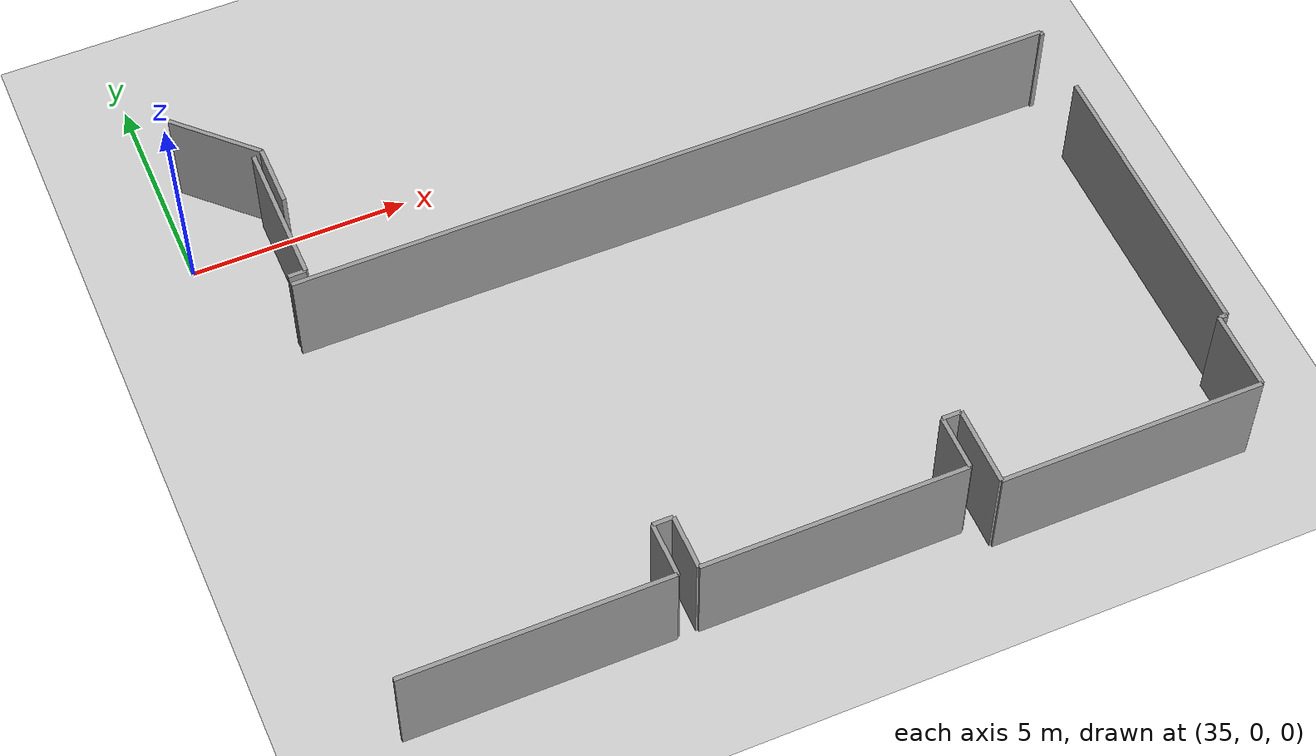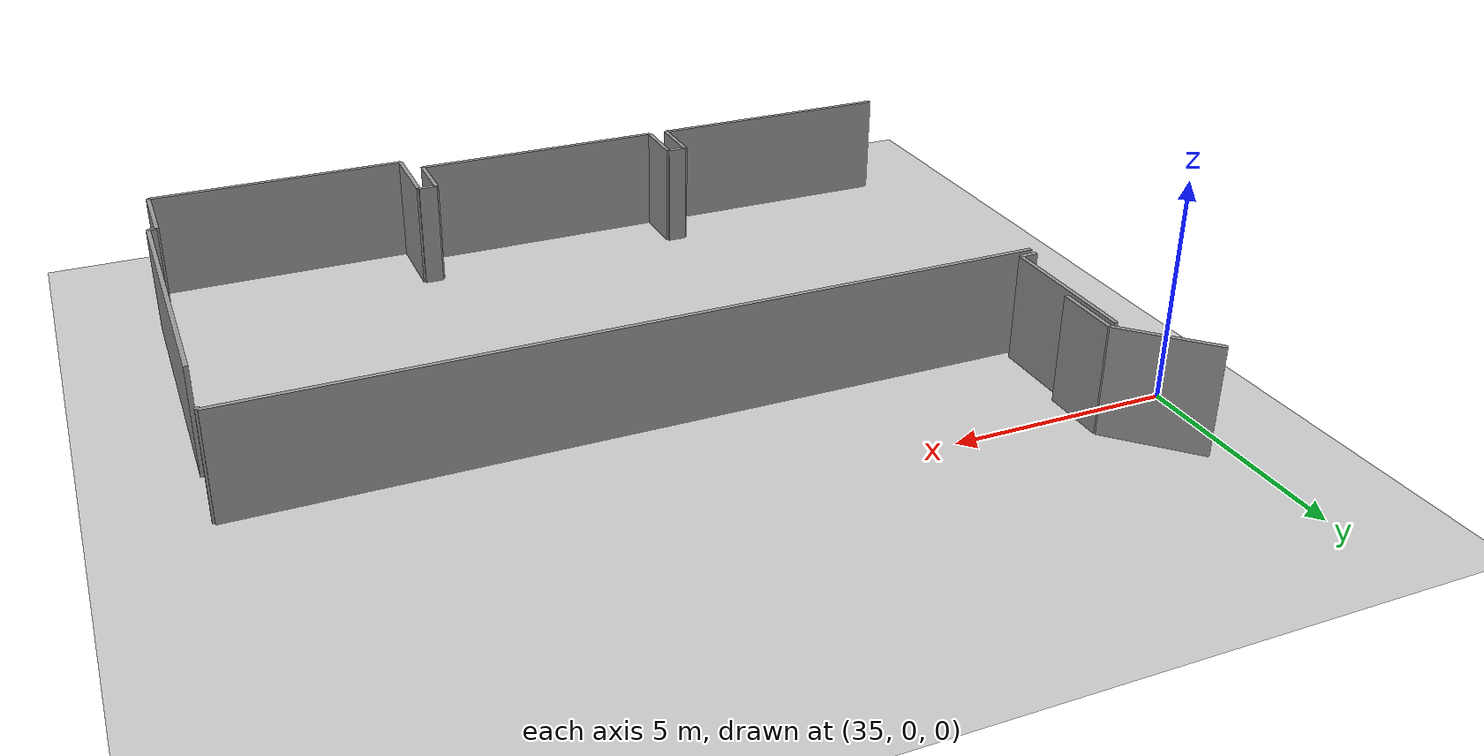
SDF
<sdf version="1.6">
 <world name="default">
  <model name="ground_plane">
   <static>1</static>
   <link name="link">
    <collision name="collision">
     <geometry><plane><normal>0 0 1</normal><size>100 100</size></plane></geometry>
     <surface><friction><ode><mu>100</mu><mu2>50</mu2></ode></friction></surface>
    </collision>
    <visual name="visual">
     <cast_shadows>0</cast_shadows>
     <geometry><plane><normal>0 0 1</normal><size>100 100</size></plane></geometry>
     <material>
      <script><uri>file://media/materials/scripts/gazebo.material</uri><name>Gazebo/Grey</name></script>
     </material>
    </visual>
   </link>
  </model>
  <model name="0510040943_A-40">
   <static>1</static>
   <link name="Wall_391">
    <collision name="Wall_391_Collision">
     <geometry><box><size>17.8513979804 0.1 2.5</size></box></geometry>
     <pose>8.92569899021 0 1.25 0 0 0</pose>
    </collision>
    <visual name="Wall_391_Visual">
     <pose>8.92569899021 0 1.25 0 0 0</pose>
     <geometry><box><size>17.8513979804 0.1 2.5</size></box></geometry>
     <material>
      <script><uri>file://media/materials/scripts/gazebo.material</uri><name>Gazebo/Grey</name></script>
      <ambient>1 1 1 1</ambient>
     </material>
    </visual>
    <pose>92.6523570305 -16.3500279089 0 0 0 0.0</pose>
   </link>
   <link name="Wall_392">
    <collision name="Wall_392_Collision">
     <geometry><box><size>0.0984421779063 0.1 2.5</size></box></geometry>
     <pose>0.0492210889532 0 1.25 0 0 0</pose>
    </collision>
    <visual name="Wall_392_Visual">
     <pose>0.0492210889532 0 1.25 0 0 0</pose>
     <geometry><box><size>0.0984421779063 0.1 2.5</size></box></geometry>
     <material>
      <script><uri>file://media/materials/scripts/gazebo.material</uri><name>Gazebo/Grey</name></script>
      <ambient>1 1 1 1</ambient>
     </material>
    </visual>
    <pose>110.503755011 -16.3500279089 0 0 0 -1.57079632679</pose>
   </link>
   <link name="Wall_393">
    <collision name="Wall_393_Collision">
     <geometry><box><size>6.82194144213 0.1 2.5</size></box></geometry>
     <pose>3.41097072106 0 1.25 0 0 0</pose>
    </collision>
    <visual name="Wall_393_Visual">
     <pose>3.41097072106 0 1.25 0 0 0</pose>
     <geometry><box><size>6.82194144213 0.1 2.5</size></box></geometry>
     <material>
      <script><uri>file://media/materials/scripts/gazebo.material</uri><name>Gazebo/Grey</name></script>
      <ambient>1 1 1 1</ambient>
     </material>
    </visual>
    <pose>110.503755011 -18.0695945603 0 0 0 -1.57079632679</pose>
   </link>
   <link name="Wall_394">
    <collision name="Wall_394_Collision">
     <geometry><box><size>0.186608819201 0.1 2.5</size></box></geometry>
     <pose>0.0933044096006 0 1.25 0 0 0</pose>
    </collision>
    <visual name="Wall_394_Visual">
     <pose>0.0933044096006 0 1.25 0 0 0</pose>
     <geometry><box><size>0.186608819201 0.1 2.5</size></box></geometry>
     <material>
      <script><uri>file://media/materials/scripts/gazebo.material</uri><name>Gazebo/Grey</name></script>
      <ambient>1 1 1 1</ambient>
     </material>
    </visual>
    <pose>110.503755011 -24.8915360024 0 0 0 3.14159265359</pose>
   </link>
   <link name="Wall_395">
    <collision name="Wall_395_Collision">
     <geometry><box><size>1.83120211093 0.1 2.5</size></box></geometry>
     <pose>0.915601055463 0 1.25 0 0 0</pose>
    </collision>
    <visual name="Wall_395_Visual">
     <pose>0.915601055463 0 1.25 0 0 0</pose>
     <geometry><box><size>1.83120211093 0.1 2.5</size></box></geometry>
     <material>
      <script><uri>file://media/materials/scripts/gazebo.material</uri><name>Gazebo/Grey</name></script>
      <ambient>1 1 1 1</ambient>
     </material>
    </visual>
    <pose>110.317146192 -24.8915360024 0 0 0 -1.57079632679</pose>
   </link>
   <link name="Wall_396">
    <collision name="Wall_396_Collision">
     <geometry><box><size>6.05470137515 0.1 2.5</size></box></geometry>
     <pose>3.02735068757 0 1.25 0 0 0</pose>
    </collision>
    <visual name="Wall_396_Visual">
     <pose>3.02735068757 0 1.25 0 0 0</pose>
     <geometry><box><size>6.05470137515 0.1 2.5</size></box></geometry>
     <material>
      <script><uri>file://media/materials/scripts/gazebo.material</uri><name>Gazebo/Grey</name></script>
      <ambient>1 1 1 1</ambient>
     </material>
    </visual>
    <pose>110.317146192 -26.7227381134 0 0 0 3.14159265359</pose>
   </link>
   <link name="Wall_397">
    <collision name="Wall_397_Collision">
     <geometry><box><size>1.83970162886 0.1 2.5</size></box></geometry>
     <pose>0.919850814431 0 1.25 0 0 0</pose>
    </collision>
    <visual name="Wall_397_Visual">
     <pose>0.919850814431 0 1.25 0 0 0</pose>
     <geometry><box><size>1.83970162886 0.1 2.5</size></box></geometry>
     <material>
      <script><uri>file://media/materials/scripts/gazebo.material</uri><name>Gazebo/Grey</name></script>
      <ambient>1 1 1 1</ambient>
     </material>
    </visual>
    <pose>104.262444817 -26.7227381134 0 0 0 1.57079632679</pose>
   </link>
   <link name="Wall_398">
    <collision name="Wall_398_Collision">
     <geometry><box><size>0.433729131781 0.1 2.5</size></box></geometry>
     <pose>0.21686456589 0 1.25 0 0 0</pose>
    </collision>
    <visual name="Wall_398_Visual">
     <pose>0.21686456589 0 1.25 0 0 0</pose>
     <geometry><box><size>0.433729131781 0.1 2.5</size></box></geometry>
     <material>
      <script><uri>file://media/materials/scripts/gazebo.material</uri><name>Gazebo/Grey</name></script>
      <ambient>1 1 1 1</ambient>
     </material>
    </visual>
    <pose>104.262444817 -24.8830364845 0 0 0 3.14159265359</pose>
   </link>
   <link name="Wall_399">
    <collision name="Wall_399_Collision">
     <geometry><box><size>1.2845689349 0.1 2.5</size></box></geometry>
     <pose>0.642284467448 0 1.25 0 0 0</pose>
    </collision>
    <visual name="Wall_399_Visual">
     <pose>0.642284467448 0 1.25 0 0 0</pose>
     <geometry><box><size>1.2845689349 0.1 2.5</size></box></geometry>
     <material>
      <script><uri>file://media/materials/scripts/gazebo.material</uri><name>Gazebo/Grey</name></script>
      <ambient>1 1 1 1</ambient>
     </material>
    </visual>
    <pose>103.828715685 -24.8830364845 0 0 0 -1.57079632679</pose>
   </link>
   <link name="Wall_400">
    <collision name="Wall_400_Collision">
     <geometry><box><size>6.03985893337 0.1 2.5</size></box></geometry>
     <pose>3.01992946669 0 1.25 0 0 0</pose>
    </collision>
    <visual name="Wall_400_Visual">
     <pose>3.01992946669 0 1.25 0 0 0</pose>
     <geometry><box><size>6.03985893337 0.1 2.5</size></box></geometry>
     <material>
      <script><uri>file://media/materials/scripts/gazebo.material</uri><name>Gazebo/Grey</name></script>
      <ambient>1 1 1 1</ambient>
     </material>
    </visual>
    <pose>103.828715685 -26.1676054194 0 0 0 3.14159265359</pose>
   </link>
   <link name="Wall_401">
    <collision name="Wall_401_Collision">
     <geometry><box><size>1.27974831278 0.1 2.5</size></box></geometry>
     <pose>0.639874156391 0 1.25 0 0 0</pose>
    </collision>
    <visual name="Wall_401_Visual">
     <pose>0.639874156391 0 1.25 0 0 0</pose>
     <geometry><box><size>1.27974831278 0.1 2.5</size></box></geometry>
     <material>
      <script><uri>file://media/materials/scripts/gazebo.material</uri><name>Gazebo/Grey</name></script>
      <ambient>1 1 1 1</ambient>
     </material>
    </visual>
    <pose>97.7888567514 -26.1676054194 0 0 0 1.57079632679</pose>
   </link>
   <link name="Wall_402">
    <collision name="Wall_402_Collision">
     <geometry><box><size>0.460369411884 0.1 2.5</size></box></geometry>
     <pose>0.230184705942 0 1.25 0 0 0</pose>
    </collision>
    <visual name="Wall_402_Visual">
     <pose>0.230184705942 0 1.25 0 0 0</pose>
     <geometry><box><size>0.460369411884 0.1 2.5</size></box></geometry>
     <material>
      <script><uri>file://media/materials/scripts/gazebo.material</uri><name>Gazebo/Grey</name></script>
      <ambient>1 1 1 1</ambient>
     </material>
    </visual>
    <pose>97.7888567514 -24.8878571066 0 0 0 3.14159265359</pose>
   </link>
   <link name="Wall_403">
    <collision name="Wall_403_Collision">
     <geometry><box><size>1.2676967575 0.1 2.5</size></box></geometry>
     <pose>0.633848378749 0 1.25 0 0 0</pose>
    </collision>
    <visual name="Wall_403_Visual">
     <pose>0.633848378749 0 1.25 0 0 0</pose>
     <geometry><box><size>1.2676967575 0.1 2.5</size></box></geometry>
     <material>
      <script><uri>file://media/materials/scripts/gazebo.material</uri><name>Gazebo/Grey</name></script>
      <ambient>1 1 1 1</ambient>
     </material>
    </visual>
    <pose>97.3284873395 -24.8878571066 0 0 0 -1.57079632679</pose>
   </link>
   <link name="Wall_404">
    <collision name="Wall_404_Collision">
     <geometry><box><size>6.03820977851 0.1 2.5</size></box></geometry>
     <pose>3.01910488925 0 1.25 0 0 0</pose>
    </collision>
    <visual name="Wall_404_Visual">
     <pose>3.01910488925 0 1.25 0 0 0</pose>
     <geometry><box><size>6.03820977851 0.1 2.5</size></box></geometry>
     <material>
      <script><uri>file://media/materials/scripts/gazebo.material</uri><name>Gazebo/Grey</name></script>
      <ambient>1 1 1 1</ambient>
     </material>
    </visual>
    <pose>97.3284873395 -26.1555538641 0 0 0 -3.14155063502</pose>
   </link>
   <link name="Wall_434">
    <collision name="Wall_434_Collision">
     <geometry><box><size>3.37418176283 0.1 2.5</size></box></geometry>
     <pose>1.68709088141 0 1.25 0 0 0</pose>
    </collision>
    <visual name="Wall_434_Visual">
     <pose>1.68709088141 0 1.25 0 0 0</pose>
     <geometry><box><size>3.37418176283 0.1 2.5</size></box></geometry>
     <material>
      <script><uri>file://media/materials/scripts/gazebo.material</uri><name>Gazebo/Grey</name></script>
      <ambient>1 1 1 1</ambient>
     </material>
    </visual>
    <pose>93.057796722 -12.7467397371 0 0 0 -1.57079632679</pose>
   </link>
   <link name="Wall_435">
    <collision name="Wall_435_Collision">
     <geometry><box><size>0.396559598112 0.1 2.5</size></box></geometry>
     <pose>0.198279799056 0 1.25 0 0 0</pose>
    </collision>
    <visual name="Wall_435_Visual">
     <pose>0.198279799056 0 1.25 0 0 0</pose>
     <geometry><box><size>0.396559598112 0.1 2.5</size></box></geometry>
     <material>
      <script><uri>file://media/materials/scripts/gazebo.material</uri><name>Gazebo/Grey</name></script>
      <ambient>1 1 1 1</ambient>
     </material>
    </visual>
    <pose>93.057796722 -16.1209215 0 0 0 3.14159265359</pose>
   </link>
   <link name="Wall_468">
    <collision name="Wall_468_Collision">
     <geometry><box><size>1.47295377277 0.1 2.5</size></box></geometry>
     <pose>0.736476886386 0 1.25 0 0 0</pose>
    </collision>
    <visual name="Wall_468_Visual">
     <pose>0.736476886386 0 1.25 0 0 0</pose>
     <geometry><box><size>1.47295377277 0.1 2.5</size></box></geometry>
     <material>
      <script><uri>file://media/materials/scripts/gazebo.material</uri><name>Gazebo/Grey</name></script>
      <ambient>1 1 1 1</ambient>
     </material>
    </visual>
    <pose>93.2687623687 -14.1362206323 0 0 0 1.57079632679</pose>
   </link>
   <link name="Wall_469">
    <collision name="Wall_469_Collision">
     <geometry><box><size>2.26489814941 0.1 2.5</size></box></geometry>
     <pose>1.13244907471 0 1.25 0 0 0</pose>
    </collision>
    <visual name="Wall_469_Visual">
     <pose>1.13244907471 0 1.25 0 0 0</pose>
     <geometry><box><size>2.26489814941 0.1 2.5</size></box></geometry>
     <material>
      <script><uri>file://media/materials/scripts/gazebo.material</uri><name>Gazebo/Grey</name></script>
      <ambient>1 1 1 1</ambient>
     </material>
    </visual>
    <pose>93.2687623687 -12.6632668595 0 0 0 2.35615488466</pose>
   </link>
   <pose>-56.15 13.3913863094 0 0 0 0</pose>
  </model>
 </world>
</sdf>
